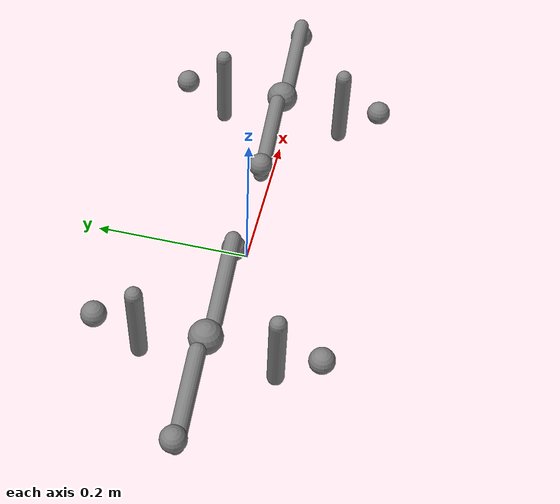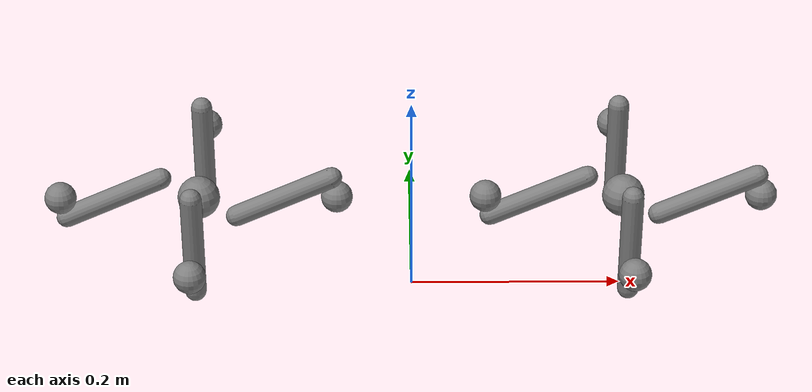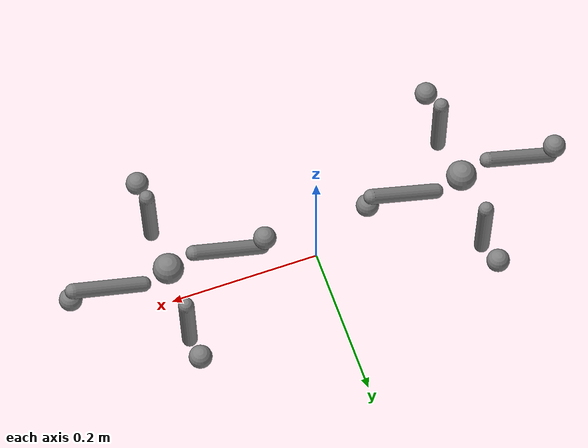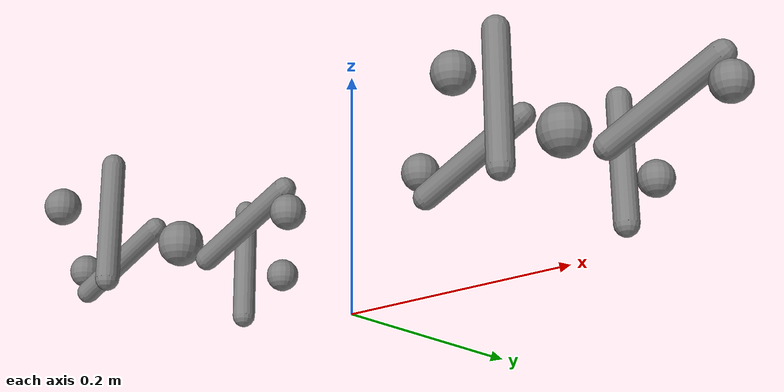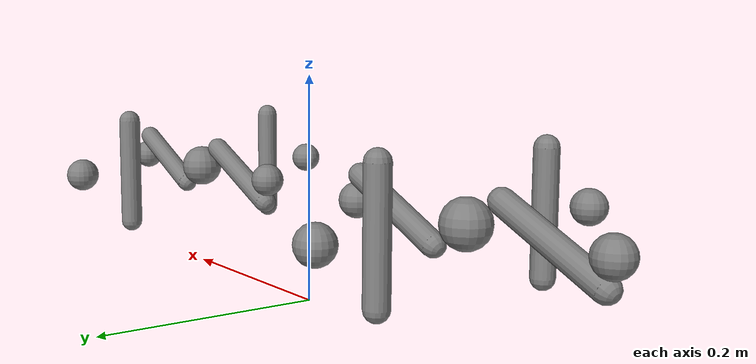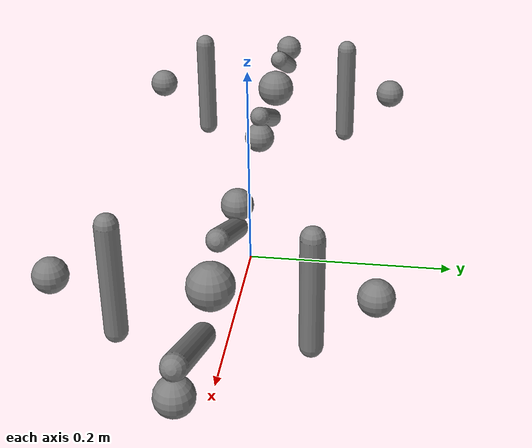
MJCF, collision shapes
<mujoco model="cf2_two">
  <!--─────────────────────────────────────────────────────────────────────────
    1) Compiler & Default Classes
  ─────────────────────────────────────────────────────────────────────────-->
  <compiler inertiafromgeom="false" meshdir="assets" autolimits="true"/>
  <default>
    <default class="cf2">
      <!-- Visual geoms: contype=0, conaffinity=0, group=2 -->
      <default class="visual">
        <geom group="2" type="mesh" contype="0" conaffinity="0"/>
      </default>
      <!-- Collision geoms: contype=1, conaffinity=1, group=3 -->
      <default class="collision">
        <geom group="3" type="mesh" contype="1" conaffinity="1"/>
      </default>
      <site group="5"/>
    </default>
  </default>

  <!--─────────────────────────────────────────────────────────────────────────
    2) Assets: Only the 7 Visual Meshes
  ─────────────────────────────────────────────────────────────────────────-->
  <asset>
    <material name="propeller_plastic"    rgba="0.792 0.820 0.933 1"/>
    <material name="medium_gloss_plastic" rgba="0.109 0.184 0.000 1"/>
    <material name="polished_gold"        rgba="0.969 0.878 0.600 1"/>
    <material name="polished_plastic"     rgba="0.631 0.659 0.678 1"/>
    <material name="burnished_chrome"     rgba="0.898 0.898 0.898 1"/>
    <material name="body_frame_plastic"   rgba="0.102 0.102 0.102 1"/>
    <material name="white"                rgba="1     1     1     1"/>

    <mesh file="cf2_0.obj"/>
    <mesh file="cf2_1.obj"/>
    <mesh file="cf2_2.obj"/>
    <mesh file="cf2_3.obj"/>
    <mesh file="cf2_4.obj"/>
    <mesh file="cf2_5.obj"/>
    <mesh file="cf2_6.obj"/>
  </asset>

  <!--─────────────────────────────────────────────────────────────────────────
    3) Worldbody: Two Free‐Floating Crazyflies
  ─────────────────────────────────────────────────────────────────────────-->
  <worldbody>
    <!--—— Crazyflie #1 ——-->
    <body name="cf2_1" pos="-0.2 0 0.1" childclass="cf2">
      <freejoint/>
      <inertial pos="0 0 0"
                mass="0.027"
                diaginertia="2.3951e-5 2.3951e-5 3.2347e-5"/>

      <!-- Camera tracking the combined center of mass (optional) -->
      <camera name="track" pos="-1 0 0.5" xyaxes="0 -1 0  1 0 2" mode="trackcom"/>

      <!-- Visual meshes -->
      <geom mesh="cf2_0" material="propeller_plastic"    class="visual"/>
      <geom mesh="cf2_1" material="medium_gloss_plastic" class="visual"/>
      <geom mesh="cf2_2" material="polished_gold"        class="visual"/>
      <geom mesh="cf2_3" material="polished_plastic"     class="visual"/>
      <geom mesh="cf2_4" material="burnished_chrome"     class="visual"/>
      <geom mesh="cf2_5" material="body_frame_plastic"   class="visual"/>
      <geom mesh="cf2_6" material="white"                class="visual"/>

      <!-- Collision primitives (no initial overlap) -->
      <!-- Central sphere (radius 0.02) -->
      <geom type="sphere"
            size="0.02"
            pos="0 0 0"
            class="collision"/>

      <!-- Four rotor‐arms as capsules (radius 0.01, half‐length 0.05) -->
      <geom type="capsule"
            size="0.01 0.05"
            pos="0.08  0    0"
            quat="0 1 0 1.5708"
            class="collision"/>
      <geom type="capsule"
            size="0.01 0.05"
            pos="-0.08 0    0"
            quat="0 1 0 1.5708"
            class="collision"/>
      <geom type="capsule"
            size="0.01 0.05"
            pos="0    0.08  0"
            quat="1 0 0 1.5708"
            class="collision"/>
      <geom type="capsule"
            size="0.01 0.05"
            pos="0   -0.08  0"
            quat="1 0 0 1.5708"
            class="collision"/>

      <!-- Four rotor‐hubs as spheres (radius 0.015) -->
      <geom type="sphere"
            size="0.015"
            pos="0.13  0    0"
            class="collision"/>
      <geom type="sphere"
            size="0.015"
            pos="-0.13 0    0"
            class="collision"/>
      <geom type="sphere"
            size="0.015"
            pos="0    0.13  0"
            class="collision"/>
      <geom type="sphere"
            size="0.015"
            pos="0   -0.13  0"
            class="collision"/>

      <!-- Sites -->
      <site name="imu1"/>
      <site name="actuation1"/>
    </body>

    <!--—— Crazyflie #2 ——-->
    <body name="cf2_2" pos="0.2 0 0.1" childclass="cf2">
      <freejoint/>
      <inertial pos="0 0 0"
                mass="0.027"
                diaginertia="2.3951e-5 2.3951e-5 3.2347e-5"/>

      <!-- Visual meshes -->
      <geom mesh="cf2_0" material="propeller_plastic"    class="visual"/>
      <geom mesh="cf2_1" material="medium_gloss_plastic" class="visual"/>
      <geom mesh="cf2_2" material="polished_gold"        class="visual"/>
      <geom mesh="cf2_3" material="polished_plastic"     class="visual"/>
      <geom mesh="cf2_4" material="burnished_chrome"     class="visual"/>
      <geom mesh="cf2_5" material="body_frame_plastic"   class="visual"/>
      <geom mesh="cf2_6" material="white"                class="visual"/>

      <!-- Collision primitives (positioned identically relative to body frame) -->
      <geom type="sphere"
            size="0.02"
            pos="0 0 0"
            class="collision"/>

      <geom type="capsule"
            size="0.01 0.05"
            pos="0.08  0    0"
            quat="0 1 0 1.5708"
            class="collision"/>
      <geom type="capsule"
            size="0.01 0.05"
            pos="-0.08 0    0"
            quat="0 1 0 1.5708"
            class="collision"/>
      <geom type="capsule"
            size="0.01 0.05"
            pos="0    0.08  0"
            quat="1 0 0 1.5708"
            class="collision"/>
      <geom type="capsule"
            size="0.01 0.05"
            pos="0   -0.08  0"
            quat="1 0 0 1.5708"
            class="collision"/>

      <geom type="sphere"
            size="0.015"
            pos="0.13  0    0"
            class="collision"/>
      <geom type="sphere"
            size="0.015"
            pos="-0.13 0    0"
            class="collision"/>
      <geom type="sphere"
            size="0.015"
            pos="0    0.13  0"
            class="collision"/>
      <geom type="sphere"
            size="0.015"
            pos="0   -0.13  0"
            class="collision"/>

      <!-- Sites -->
      <site name="imu2"/>
      <site name="actuation2"/>
    </body>
  </worldbody>

  <actuator>
    <!-- CF2 #1 actuators -->
    <motor class="cf2" name="cf2_1_thrust"   ctrlrange="0 0.35"
           gear="0 0 1  0  0    0"
           site="actuation1"/>
    <motor class="cf2" name="cf2_1_xmoment"  ctrlrange="-1 1"
           gear="0 0 0  -0.00001  0  0"
           site="actuation1"/>
    <motor class="cf2" name="cf2_1_ymoment"  ctrlrange="-1 1"
           gear="0 0 0  0  -0.00001  0"
           site="actuation1"/>
    <motor class="cf2" name="cf2_1_zmoment"  ctrlrange="-1 1"
           gear="0 0 0  0   0  -0.00001"
           site="actuation1"/>

    <!-- CF2 #2 actuators -->
    <motor class="cf2" name="cf2_2_thrust"   ctrlrange="0 0.35"
           gear="0 0 1  0  0    0"
           site="actuation2"/>
    <motor class="cf2" name="cf2_2_xmoment"  ctrlrange="-1 1"
           gear="0 0 0  -0.00001  0  0"
           site="actuation2"/>
    <motor class="cf2" name="cf2_2_ymoment"  ctrlrange="-1 1"
           gear="0 0 0  0  -0.00001  0"
           site="actuation2"/>
    <motor class="cf2" name="cf2_2_zmoment"  ctrlrange="-1 1"
           gear="0 0 0  0   0  -0.00001"
           site="actuation2"/>
  </actuator>

  <sensor>
    <!-- CF2 #1 sensors -->
    <gyro          name="cf2_1_gyro"    site="imu1"/>
    <accelerometer name="cf2_1_linacc"  site="imu1"/>
    <framequat     name="cf2_1_quat"    objtype="site" objname="imu1"/>

    <!-- CF2 #2 sensors -->
    <gyro          name="cf2_2_gyro"    site="imu2"/>
    <accelerometer name="cf2_2_linacc"  site="imu2"/>
    <framequat     name="cf2_2_quat"    objtype="site" objname="imu2"/>
  </sensor>
</mujoco>
